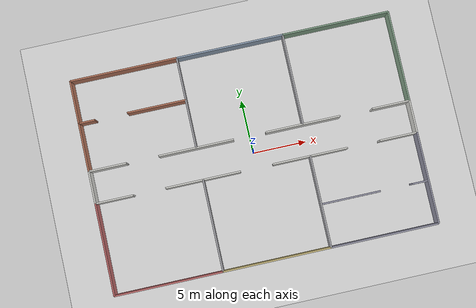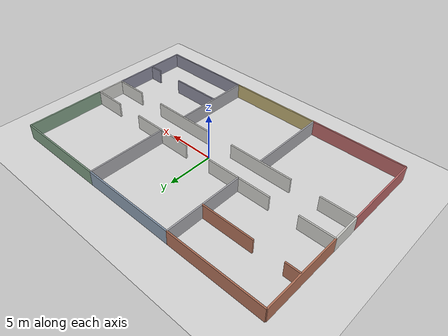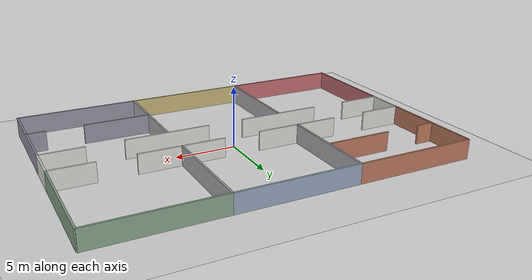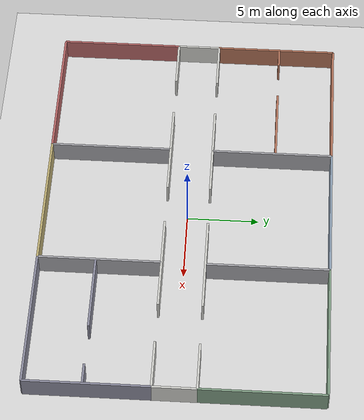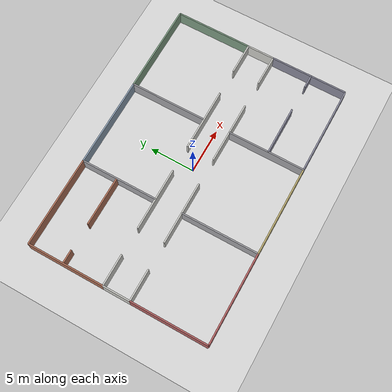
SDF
<sdf version="1.10">
 <world name="inspection_arena">
  <physics name="1ms" type="ignored">
   <max_step_size>0.002</max_step_size>
   <real_time_factor>1.0</real_time_factor>
  </physics>
  <plugin filename="gz-sim-physics-system" name="gz::sim::systems::Physics"/>
  <plugin filename="gz-sim-sensors-system" name="gz::sim::systems::Sensors">
   <render_engine>ogre2</render_engine>
  </plugin>
  <plugin filename="gz-sim-scene-broadcaster-system" name="gz::sim::systems::SceneBroadcaster"/>
  <plugin filename="gz-sim-user-commands-system" name="gz::sim::systems::UserCommands"/>
  <plugin filename="gz-sim-contact-system" name="gz::sim::systems::Contact"/>
  <plugin filename="gz-sim-imu-system" name="gz::sim::systems::Imu"/>
  <plugin filename="gz-sim-particle-emitter-system" name="gz::sim::systems::ParticleEmitter"/>
  <scene><ambient>0.45 0.45 0.45 1</ambient><background>0.7 0.7 0.8 1</background><grid>false</grid></scene>
  <light type="directional" name="sun">
   <pose>0 0 12 0 0 0</pose>
   <diffuse>0.9 0.9 0.9 1</diffuse>
   <specular>0.2 0.2 0.2 1</specular>
   <direction>-0.4 0.3 -0.9</direction>
  </light>
  <model name="ground_plane">
   <static>true</static>
   <link name="link">
    <collision name="c"><geometry><plane><normal>0 0 1</normal><size>120 120</size></plane></geometry></collision>
    <visual name="v">
     <geometry><plane><normal>0 0 1</normal><size>120 120</size></plane></geometry>
     <material><ambient>0.8 0.8 0.8 1</ambient><diffuse>0.85 0.85 0.85 1</diffuse></material>
    </visual>
   </link>
  </model>
  <model name="facility">
   <static>true</static>
   <link name="structure">
    <collision name="nw_back_c">
     <pose>-10 10 0.8 0 0 0</pose>
     <geometry><box><size>10 0.15 1.6</size></box></geometry>
    </collision>
    <visual name="nw_back_v">
     <pose>-10 10 0.8 0 0 0</pose>
     <geometry><box><size>10 0.15 1.6</size></box></geometry>
     <material>
      <ambient>0.70 0.45 0.35 1</ambient>
      <diffuse>0.70 0.45 0.35 1</diffuse>
      <specular>0.1 0.1 0.1 1</specular>
     </material>
    </visual>
    <collision name="nc_back_c">
     <pose>0 10 0.8 0 0 0</pose>
     <geometry><box><size>10 0.15 1.6</size></box></geometry>
    </collision>
    <visual name="nc_back_v">
     <pose>0 10 0.8 0 0 0</pose>
     <geometry><box><size>10 0.15 1.6</size></box></geometry>
     <material>
      <ambient>0.55 0.62 0.70 1</ambient>
      <diffuse>0.55 0.62 0.70 1</diffuse>
      <specular>0.1 0.1 0.1 1</specular>
     </material>
    </visual>
    <collision name="ne_back_c">
     <pose>10 10 0.8 0 0 0</pose>
     <geometry><box><size>10 0.15 1.6</size></box></geometry>
    </collision>
    <visual name="ne_back_v">
     <pose>10 10 0.8 0 0 0</pose>
     <geometry><box><size>10 0.15 1.6</size></box></geometry>
     <material>
      <ambient>0.50 0.62 0.52 1</ambient>
      <diffuse>0.50 0.62 0.52 1</diffuse>
      <specular>0.1 0.1 0.1 1</specular>
     </material>
    </visual>
    <collision name="sw_back_c">
     <pose>-10 -10 0.8 0 0 0</pose>
     <geometry><box><size>10 0.15 1.6</size></box></geometry>
    </collision>
    <visual name="sw_back_v">
     <pose>-10 -10 0.8 0 0 0</pose>
     <geometry><box><size>10 0.15 1.6</size></box></geometry>
     <material>
      <ambient>0.72 0.40 0.40 1</ambient>
      <diffuse>0.72 0.40 0.40 1</diffuse>
      <specular>0.1 0.1 0.1 1</specular>
     </material>
    </visual>
    <collision name="sc_back_c">
     <pose>0 -10 0.8 0 0 0</pose>
     <geometry><box><size>10 0.15 1.6</size></box></geometry>
    </collision>
    <visual name="sc_back_v">
     <pose>0 -10 0.8 0 0 0</pose>
     <geometry><box><size>10 0.15 1.6</size></box></geometry>
     <material>
      <ambient>0.74 0.68 0.45 1</ambient>
      <diffuse>0.74 0.68 0.45 1</diffuse>
      <specular>0.1 0.1 0.1 1</specular>
     </material>
    </visual>
    <collision name="se_back_c">
     <pose>10 -10 0.8 0 0 0</pose>
     <geometry><box><size>10 0.15 1.6</size></box></geometry>
    </collision>
    <visual name="se_back_v">
     <pose>10 -10 0.8 0 0 0</pose>
     <geometry><box><size>10 0.15 1.6</size></box></geometry>
     <material>
      <ambient>0.55 0.55 0.62 1</ambient>
      <diffuse>0.55 0.55 0.62 1</diffuse>
      <specular>0.1 0.1 0.1 1</specular>
     </material>
    </visual>
    <collision name="ne_side_c">
     <pose>15 5.75 0.8 0 0 0</pose>
     <geometry><box><size>0.15 8.5 1.6</size></box></geometry>
    </collision>
    <visual name="ne_side_v">
     <pose>15 5.75 0.8 0 0 0</pose>
     <geometry><box><size>0.15 8.5 1.6</size></box></geometry>
     <material>
      <ambient>0.50 0.62 0.52 1</ambient>
      <diffuse>0.50 0.62 0.52 1</diffuse>
      <specular>0.1 0.1 0.1 1</specular>
     </material>
    </visual>
    <collision name="cor_e_c">
     <pose>15 0 0.8 0 0 0</pose>
     <geometry><box><size>0.15 3.0 1.6</size></box></geometry>
    </collision>
    <visual name="cor_e_v">
     <pose>15 0 0.8 0 0 0</pose>
     <geometry><box><size>0.15 3.0 1.6</size></box></geometry>
     <material>
      <ambient>0.82 0.82 0.80 1</ambient>
      <diffuse>0.82 0.82 0.80 1</diffuse>
      <specular>0.1 0.1 0.1 1</specular>
     </material>
    </visual>
    <collision name="se_side_c">
     <pose>15 -5.75 0.8 0 0 0</pose>
     <geometry><box><size>0.15 8.5 1.6</size></box></geometry>
    </collision>
    <visual name="se_side_v">
     <pose>15 -5.75 0.8 0 0 0</pose>
     <geometry><box><size>0.15 8.5 1.6</size></box></geometry>
     <material>
      <ambient>0.55 0.55 0.62 1</ambient>
      <diffuse>0.55 0.55 0.62 1</diffuse>
      <specular>0.1 0.1 0.1 1</specular>
     </material>
    </visual>
    <collision name="nw_side_c">
     <pose>-15 5.75 0.8 0 0 0</pose>
     <geometry><box><size>0.15 8.5 1.6</size></box></geometry>
    </collision>
    <visual name="nw_side_v">
     <pose>-15 5.75 0.8 0 0 0</pose>
     <geometry><box><size>0.15 8.5 1.6</size></box></geometry>
     <material>
      <ambient>0.70 0.45 0.35 1</ambient>
      <diffuse>0.70 0.45 0.35 1</diffuse>
      <specular>0.1 0.1 0.1 1</specular>
     </material>
    </visual>
    <collision name="cor_w_c">
     <pose>-15 0 0.8 0 0 0</pose>
     <geometry><box><size>0.15 3.0 1.6</size></box></geometry>
    </collision>
    <visual name="cor_w_v">
     <pose>-15 0 0.8 0 0 0</pose>
     <geometry><box><size>0.15 3.0 1.6</size></box></geometry>
     <material>
      <ambient>0.82 0.82 0.80 1</ambient>
      <diffuse>0.82 0.82 0.80 1</diffuse>
      <specular>0.1 0.1 0.1 1</specular>
     </material>
    </visual>
    <collision name="sw_side_c">
     <pose>-15 -5.75 0.8 0 0 0</pose>
     <geometry><box><size>0.15 8.5 1.6</size></box></geometry>
    </collision>
    <visual name="sw_side_v">
     <pose>-15 -5.75 0.8 0 0 0</pose>
     <geometry><box><size>0.15 8.5 1.6</size></box></geometry>
     <material>
      <ambient>0.72 0.40 0.40 1</ambient>
      <diffuse>0.72 0.40 0.40 1</diffuse>
      <specular>0.1 0.1 0.1 1</specular>
     </material>
    </visual>
    <collision name="c_n0_c">
     <pose>-13.25 1.5 0.8 0 0 0</pose>
     <geometry><box><size>3.5 0.15 1.6</size></box></geometry>
    </collision>
    <visual name="c_n0_v">
     <pose>-13.25 1.5 0.8 0 0 0</pose>
     <geometry><box><size>3.5 0.15 1.6</size></box></geometry>
     <material>
      <ambient>0.82 0.82 0.80 1</ambient>
      <diffuse>0.82 0.82 0.80 1</diffuse>
      <specular>0.1 0.1 0.1 1</specular>
     </material>
    </visual>
    <collision name="c_n1_c">
     <pose>-5.0 1.5 0.8 0 0 0</pose>
     <geometry><box><size>7.0 0.15 1.6</size></box></geometry>
    </collision>
    <visual name="c_n1_v">
     <pose>-5.0 1.5 0.8 0 0 0</pose>
     <geometry><box><size>7.0 0.15 1.6</size></box></geometry>
     <material>
      <ambient>0.82 0.82 0.80 1</ambient>
      <diffuse>0.82 0.82 0.80 1</diffuse>
      <specular>0.1 0.1 0.1 1</specular>
     </material>
    </visual>
    <collision name="c_n2_c">
     <pose>5.0 1.5 0.8 0 0 0</pose>
     <geometry><box><size>7.0 0.15 1.6</size></box></geometry>
    </collision>
    <visual name="c_n2_v">
     <pose>5.0 1.5 0.8 0 0 0</pose>
     <geometry><box><size>7.0 0.15 1.6</size></box></geometry>
     <material>
      <ambient>0.82 0.82 0.80 1</ambient>
      <diffuse>0.82 0.82 0.80 1</diffuse>
      <specular>0.1 0.1 0.1 1</specular>
     </material>
    </visual>
    <collision name="c_n3_c">
     <pose>13.25 1.5 0.8 0 0 0</pose>
     <geometry><box><size>3.5 0.15 1.6</size></box></geometry>
    </collision>
    <visual name="c_n3_v">
     <pose>13.25 1.5 0.8 0 0 0</pose>
     <geometry><box><size>3.5 0.15 1.6</size></box></geometry>
     <material>
      <ambient>0.82 0.82 0.80 1</ambient>
      <diffuse>0.82 0.82 0.80 1</diffuse>
      <specular>0.1 0.1 0.1 1</specular>
     </material>
    </visual>
    <collision name="c_s0_c">
     <pose>-13.25 -1.5 0.8 0 0 0</pose>
     <geometry><box><size>3.5 0.15 1.6</size></box></geometry>
    </collision>
    <visual name="c_s0_v">
     <pose>-13.25 -1.5 0.8 0 0 0</pose>
     <geometry><box><size>3.5 0.15 1.6</size></box></geometry>
     <material>
      <ambient>0.82 0.82 0.80 1</ambient>
      <diffuse>0.82 0.82 0.80 1</diffuse>
      <specular>0.1 0.1 0.1 1</specular>
     </material>
    </visual>
    <collision name="c_s1_c">
     <pose>-5.0 -1.5 0.8 0 0 0</pose>
     <geometry><box><size>7.0 0.15 1.6</size></box></geometry>
    </collision>
    <visual name="c_s1_v">
     <pose>-5.0 -1.5 0.8 0 0 0</pose>
     <geometry><box><size>7.0 0.15 1.6</size></box></geometry>
     <material>
      <ambient>0.82 0.82 0.80 1</ambient>
      <diffuse>0.82 0.82 0.80 1</diffuse>
      <specular>0.1 0.1 0.1 1</specular>
     </material>
    </visual>
    <collision name="c_s2_c">
     <pose>5.0 -1.5 0.8 0 0 0</pose>
     <geometry><box><size>7.0 0.15 1.6</size></box></geometry>
    </collision>
    <visual name="c_s2_v">
     <pose>5.0 -1.5 0.8 0 0 0</pose>
     <geometry><box><size>7.0 0.15 1.6</size></box></geometry>
     <material>
      <ambient>0.82 0.82 0.80 1</ambient>
      <diffuse>0.82 0.82 0.80 1</diffuse>
      <specular>0.1 0.1 0.1 1</specular>
     </material>
    </visual>
    <collision name="c_s3_c">
     <pose>13.25 -1.5 0.8 0 0 0</pose>
     <geometry><box><size>3.5 0.15 1.6</size></box></geometry>
    </collision>
    <visual name="c_s3_v">
     <pose>13.25 -1.5 0.8 0 0 0</pose>
     <geometry><box><size>3.5 0.15 1.6</size></box></geometry>
     <material>
      <ambient>0.82 0.82 0.80 1</ambient>
      <diffuse>0.82 0.82 0.80 1</diffuse>
      <specular>0.1 0.1 0.1 1</specular>
     </material>
    </visual>
    <collision name="div_nw_c">
     <pose>-5 5.75 0.8 0 0 0</pose>
     <geometry><box><size>0.15 8.5 1.6</size></box></geometry>
    </collision>
    <visual name="div_nw_v">
     <pose>-5 5.75 0.8 0 0 0</pose>
     <geometry><box><size>0.15 8.5 1.6</size></box></geometry>
     <material>
      <ambient>0.65 0.65 0.67 1</ambient>
      <diffuse>0.65 0.65 0.67 1</diffuse>
      <specular>0.1 0.1 0.1 1</specular>
     </material>
    </visual>
    <collision name="div_ne_c">
     <pose>5 5.75 0.8 0 0 0</pose>
     <geometry><box><size>0.15 8.5 1.6</size></box></geometry>
    </collision>
    <visual name="div_ne_v">
     <pose>5 5.75 0.8 0 0 0</pose>
     <geometry><box><size>0.15 8.5 1.6</size></box></geometry>
     <material>
      <ambient>0.65 0.65 0.67 1</ambient>
      <diffuse>0.65 0.65 0.67 1</diffuse>
      <specular>0.1 0.1 0.1 1</specular>
     </material>
    </visual>
    <collision name="div_sw_c">
     <pose>-5 -5.75 0.8 0 0 0</pose>
     <geometry><box><size>0.15 8.5 1.6</size></box></geometry>
    </collision>
    <visual name="div_sw_v">
     <pose>-5 -5.75 0.8 0 0 0</pose>
     <geometry><box><size>0.15 8.5 1.6</size></box></geometry>
     <material>
      <ambient>0.65 0.65 0.67 1</ambient>
      <diffuse>0.65 0.65 0.67 1</diffuse>
      <specular>0.1 0.1 0.1 1</specular>
     </material>
    </visual>
    <collision name="div_se_c">
     <pose>5 -5.75 0.8 0 0 0</pose>
     <geometry><box><size>0.15 8.5 1.6</size></box></geometry>
    </collision>
    <visual name="div_se_v">
     <pose>5 -5.75 0.8 0 0 0</pose>
     <geometry><box><size>0.15 8.5 1.6</size></box></geometry>
     <material>
      <ambient>0.65 0.65 0.67 1</ambient>
      <diffuse>0.65 0.65 0.67 1</diffuse>
      <specular>0.1 0.1 0.1 1</specular>
     </material>
    </visual>
    <collision name="sub_nw0_c">
     <pose>-14.25 6.0 0.8 0 0 0</pose>
     <geometry><box><size>1.5 0.15 1.6</size></box></geometry>
    </collision>
    <visual name="sub_nw0_v">
     <pose>-14.25 6.0 0.8 0 0 0</pose>
     <geometry><box><size>1.5 0.15 1.6</size></box></geometry>
     <material>
      <ambient>0.70 0.45 0.35 1</ambient>
      <diffuse>0.70 0.45 0.35 1</diffuse>
      <specular>0.1 0.1 0.1 1</specular>
     </material>
    </visual>
    <collision name="sub_nw1_c">
     <pose>-7.75 6.0 0.8 0 0 0</pose>
     <geometry><box><size>5.5 0.15 1.6</size></box></geometry>
    </collision>
    <visual name="sub_nw1_v">
     <pose>-7.75 6.0 0.8 0 0 0</pose>
     <geometry><box><size>5.5 0.15 1.6</size></box></geometry>
     <material>
      <ambient>0.70 0.45 0.35 1</ambient>
      <diffuse>0.70 0.45 0.35 1</diffuse>
      <specular>0.1 0.1 0.1 1</specular>
     </material>
    </visual>
    <collision name="sub_se0_c">
     <pose>7.75 -6.0 0.8 0 0 0</pose>
     <geometry><box><size>5.5 0.15 1.6</size></box></geometry>
    </collision>
    <visual name="sub_se0_v">
     <pose>7.75 -6.0 0.8 0 0 0</pose>
     <geometry><box><size>5.5 0.15 1.6</size></box></geometry>
     <material>
      <ambient>0.55 0.55 0.62 1</ambient>
      <diffuse>0.55 0.55 0.62 1</diffuse>
      <specular>0.1 0.1 0.1 1</specular>
     </material>
    </visual>
    <collision name="sub_se1_c">
     <pose>14.25 -6.0 0.8 0 0 0</pose>
     <geometry><box><size>1.5 0.15 1.6</size></box></geometry>
    </collision>
    <visual name="sub_se1_v">
     <pose>14.25 -6.0 0.8 0 0 0</pose>
     <geometry><box><size>1.5 0.15 1.6</size></box></geometry>
     <material>
      <ambient>0.55 0.55 0.62 1</ambient>
      <diffuse>0.55 0.55 0.62 1</diffuse>
      <specular>0.1 0.1 0.1 1</specular>
     </material>
    </visual>
   </link>
  </model>
  <model name="hazard_fire">
   <static>true</static>
   <pose>-10 -6 0.9 0 0 0</pose>
   <link name="fire_link">
    <particle_emitter name="flames" type="box">
     <emitting>true</emitting>
     <particle_scatter_ratio>0.0</particle_scatter_ratio>
     <size>0.5 0.5 0.1</size>
     <particle_size>0.45 0.45 0.45</particle_size>
     <lifetime>1.3</lifetime>
     <min_velocity>0.5</min_velocity>
     <max_velocity>1.2</max_velocity>
     <scale_rate>0.4</scale_rate>
     <rate>45</rate>
     <material>
      <diffuse>1 1 1</diffuse>
      <specular>1 1 1</specular>
      <pbr><metal><albedo_map>fire_tex/puff.png</albedo_map></metal></pbr>
     </material>
     <color_range_image>fire_tex/flamecolors.png</color_range_image>
    </particle_emitter>
    <particle_emitter name="smoke" type="box">
     <pose>0 0 1.2 0 0 0</pose>
     <emitting>true</emitting>
     <particle_scatter_ratio>0.0</particle_scatter_ratio>
     <size>0.6 0.6 0.1</size>
     <particle_size>0.9 0.9 0.9</particle_size>
     <lifetime>4.0</lifetime>
     <min_velocity>0.6</min_velocity>
     <max_velocity>1.0</max_velocity>
     <scale_rate>1.0</scale_rate>
     <rate>12</rate>
     <material>
      <diffuse>1 1 1</diffuse>
      <pbr><metal><albedo_map>fire_tex/puff.png</albedo_map></metal></pbr>
     </material>
     <color_range_image>fire_tex/smokecolors.png</color_range_image>
    </particle_emitter>
   </link>
  </model>
 </world>
</sdf>
